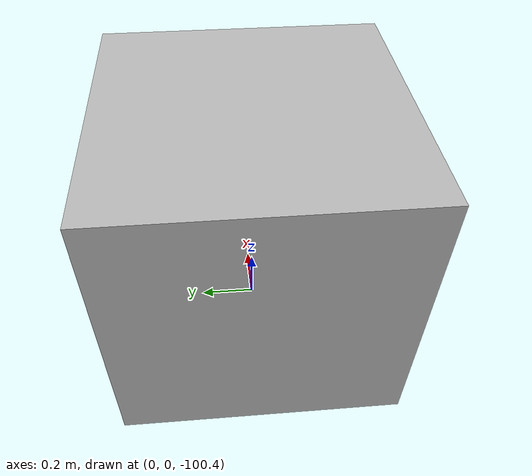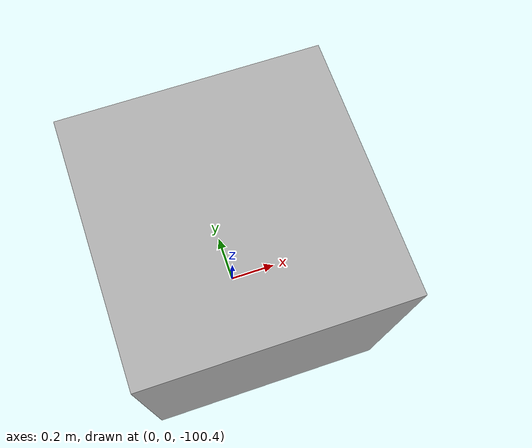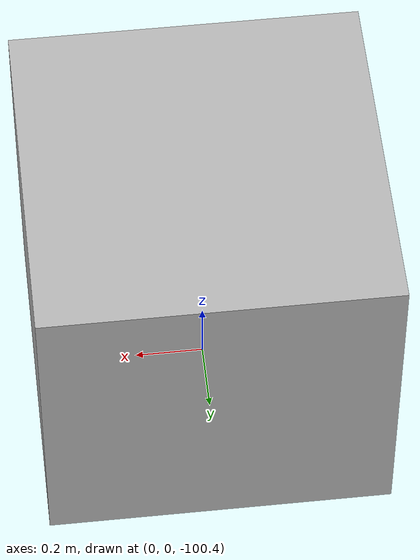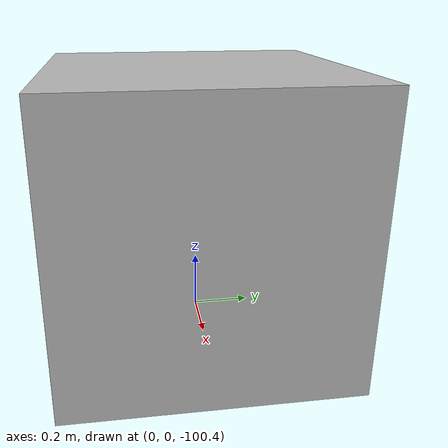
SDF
<?xml version="1.0" ?>
<!--
  Test world to prevent division by zero in graded buoyancy loop.
  Two density_change layers with a box far below both.
-->
<sdf version="1.6">
  <world name="buoyancy">

    <physics name="1ms" type="ode">
      <max_step_size>0.001</max_step_size>
      <real_time_factor>0</real_time_factor>
    </physics>
    <plugin
      filename="gz-sim-physics-system"
      name="gz::sim::systems::Physics">
    </plugin>
    <plugin
      filename="gz-sim-buoyancy-system"
      name="gz::sim::systems::Buoyancy">
      <graded_buoyancy>
        <default_density>1000</default_density>
        <density_change>
          <above_depth>0</above_depth>
          <density>1</density>
        </density_change>
        <!-- Second layer: a fully-submerged shape will have
             vol == prevLayerVol here, triggering the bug -->
        <density_change>
          <above_depth>10</above_depth>
          <density>0.1</density>
        </density_change>
      </graded_buoyancy>
    </plugin>

    <!-- Box at z=-100, far below both layer boundaries (z=0, z=10). -->
    <model name='deep_box'>
      <pose>0 0 -100 0 0 0</pose>
      <link name='body'>
        <inertial>
          <mass>1000</mass>
          <inertia>
            <ixx>166.67</ixx>
            <ixy>0</ixy>
            <ixz>0</ixz>
            <iyy>166.67</iyy>
            <iyz>0</iyz>
            <izz>166.67</izz>
          </inertia>
        </inertial>
        <collision name='body_collision'>
          <geometry>
            <box>
              <size>1 1 1</size>
            </box>
          </geometry>
        </collision>
        <visual name='body_visual'>
          <geometry>
            <box>
              <size>1 1 1</size>
            </box>
          </geometry>
        </visual>
      </link>
    </model>

  </world>
</sdf>
